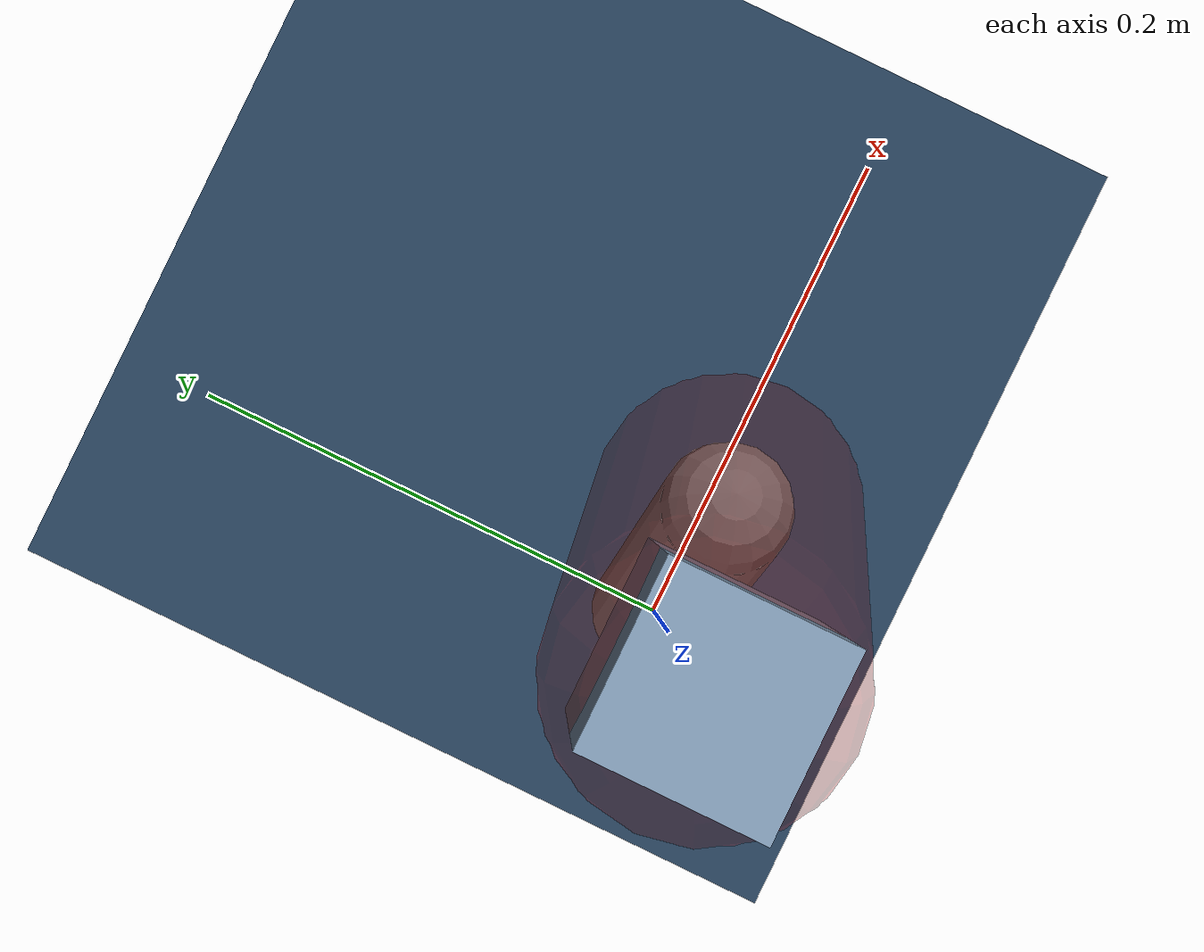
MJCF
<mujoco model="Hopper2D">
	<compiler inertiafromgeom="true" angle="radian" />
	<option timestep="0.001" integrator="implicit" cone="elliptic" solver="Newton" tolerance="1e-10" />

	<default>
		<geom contype="1" conaffinity="1" condim="3" friction="2 0.005 0.0001" solref="0.005 1" />
		<joint limited="true" damping="0.1" />
	</default>

	<asset>
		<texture name="skybox" type="skybox" builtin="gradient" rgb1=".4 .6 .8" rgb2="0 0 0" width="800" height="800" />
		<texture name="grid" type="2d" builtin="checker" rgb1=".1 .2 .3" rgb2=".2 .3 .4" width="300" height="300" mark="edge" markrgb=".2 .3 .4" />
		<material name="ground" texture="grid" texrepeat="1 1" texuniform="true" reflectance="0.1" />
		<material name="leg" rgba="0.5 0.6 0.7 1" />
	</asset>

	<worldbody>

		<geom name="floor" type="plane" size="5 5 0.25" material="ground" />

		<light directional="false" diffuse="0.8 0.8 0.8" specular="0.3 0.3 0.3" pos="0 0 2" dir="0 0 -1" />
		<light mode="targetbodycom" target="base" directional="false" diffuse="0.8 0.8 0.8" specular="0.3 0.3 0.3" pos="0 0 2" dir="0 0 -1" />

		<camera name="fixed" pos="0 -2 1" xyaxes="1 0 0 0 0 1" />
		<camera name="tracking" mode="trackcom" pos="0 -3 1" />

		<body name="root" pos="0 0 0.5347039967149192">
			<joint name="slide_x" type="slide" axis="1 0 0" range="-100 100" />
			<joint name="slide_z" type="slide" axis="0 0 1" range="0 10" />

			<body name="base" pos="0 0 0">
				<geom name="torso" type="box" size="0.03 0.03 0.1" mass="1.675" material="leg" />

				<body name="link1" pos="0 0 0" euler="0 1.426562588840983 0">
					<joint type="hinge" axis="0 -1 0" pos="0 0 0" name="hinge1" limited="true" range="-3.14 3.14" stiffness="0" damping="0.1" />
					<geom name="thigh" type="capsule" fromto="0 0 0 0.3470277074219563 0 0" size="0.05" rgba="0.5 0 0 0.3" mass="1.1183775807814778" />

					<body name="link2" pos="0.3470277074219563 0 0" euler="0 0.39932157650142036 0">
						<joint type="hinge" axis="0 -1 0" pos="0 0 0" name="hinge2" limited="true" range="-3.14 3.14" stiffness="0" damping="0.1" />
						<geom name="shank" type="capsule" fromto="0 0 0 0.19767628929296285 0 0" size="0.025" mass="0.39894103143437026" />

					</body>
				</body>
			</body>
		</body>
	</worldbody>

	<actuator>
		<motor name="torque1" joint="hinge1" ctrlrange="-54.040755678867534 54.040755678867534" ctrllimited="true" gear="1" />
		<motor name="torque2" joint="hinge2" ctrlrange="-51.39034156272438 51.39034156272438" ctrllimited="true" gear="1" />
	</actuator>
</mujoco>
